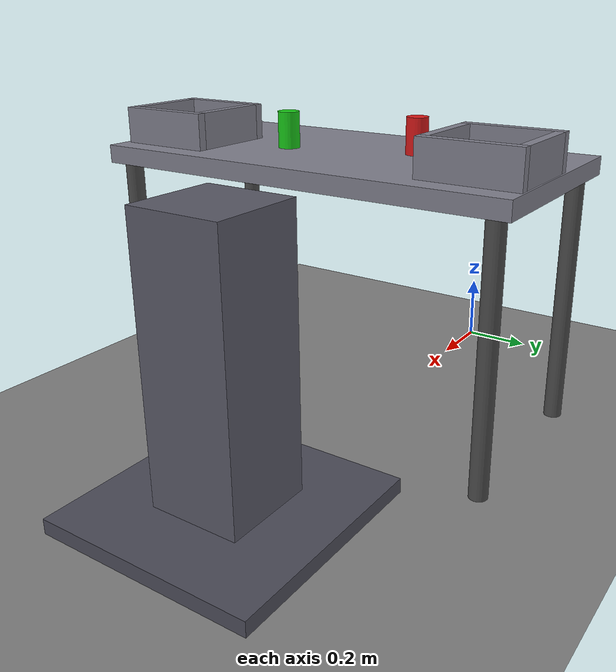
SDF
<?xml version="1.0" ?>
-->
<sdf version="1.8">
  <world name="tabletop_world">

    <physics name="250hz" type="ignored">
      <max_step_size>0.004</max_step_size>
      <real_time_factor>1.0</real_time_factor>
    </physics>

    <plugin filename="ignition-gazebo-physics-system"
            name="ignition::gazebo::systems::Physics"/>
    <plugin filename="ignition-gazebo-user-commands-system"
            name="ignition::gazebo::systems::UserCommands"/>
    <plugin filename="ignition-gazebo-scene-broadcaster-system"
            name="ignition::gazebo::systems::SceneBroadcaster"/>
    <plugin filename="ignition-gazebo-sensors-system"
            name="ignition::gazebo::systems::Sensors">
      <render_engine>ogre2</render_engine>
    </plugin>
    <plugin filename="ignition-gazebo-contact-system"
            name="ignition::gazebo::systems::Contact"/>

    <!-- Lighting -->
    <light type="directional" name="sun">
      <cast_shadows>true</cast_shadows>
      <pose>0 0 10 0 0 0</pose>
      <diffuse>1.0 1.0 1.0 1</diffuse>
      <specular>0.4 0.4 0.4 1</specular>
      <direction>-0.3 0.1 -0.9</direction>
    </light>
    <light type="directional" name="fill">
      <pose>2 1 5 0 0 0</pose>
      <diffuse>0.7 0.7 0.8 1</diffuse>
      <specular>0.1 0.1 0.1 1</specular>
      <direction>0.4 -0.2 -0.9</direction>
    </light>

    <!-- ── Ground plane ─────────────────────────────────────────────────── -->
    <model name="ground_plane">
      <static>true</static>
      <link name="link">
        <collision name="c">
          <geometry><plane><normal>0 0 1</normal></plane></geometry>
        </collision>
        <visual name="v">
          <geometry><plane><normal>0 0 1</normal><size>20 20</size></plane></geometry>
          <material>
            <ambient>0.4 0.4 0.4 1</ambient>
            <diffuse>0.5 0.5 0.5 1</diffuse>
          </material>
        </visual>
      </link>
    </model>

    <!-- ── ROBOT PEDESTAL ────────────────────────────────────────────────── -->
    <!--
      Standalone column supporting the arm base at world z=0.765.
      Column: 0.25×0.25×0.765 m, centre at (1.35, 0, 0.3825).
      Base plate: 0.60×0.60×0.04 m, centre at (1.35, 0, 0.02).
    -->
    <model name="robot_pedestal">
      <static>true</static>
      <pose>1.35 0 0 0 0 0</pose>

      <link name="base_plate">
        <pose>0 0 0.02 0 0 0</pose>
        <collision name="c"><geometry><box><size>0.60 0.60 0.04</size></box></geometry></collision>
        <visual name="v">
          <geometry><box><size>0.60 0.60 0.04</size></box></geometry>
          <material>
            <ambient>0.25 0.25 0.30 1</ambient>
            <diffuse>0.30 0.30 0.35 1</diffuse>
            <specular>0.15 0.15 0.15 1</specular>
          </material>
        </visual>
      </link>

      <link name="column">
        <pose>0 0 0.4025 0 0 0</pose>
        <collision name="c"><geometry><box><size>0.25 0.25 0.725</size></box></geometry></collision>
        <visual name="v">
          <geometry><box><size>0.25 0.25 0.725</size></box></geometry>
          <material>
            <ambient>0.30 0.30 0.35 1</ambient>
            <diffuse>0.35 0.35 0.40 1</diffuse>
            <specular>0.20 0.20 0.20 1</specular>
          </material>
        </visual>
      </link>
    </model>

    <!-- ── CONVEYOR TABLE ────────────────────────────────────────────────── -->
    <model name="conveyor_table">
      <static>true</static>
      <pose>0.70 -0.09 0.74 0 0 0</pose>

      <link name="table_top">
        <collision name="c">
          <geometry><box><size>0.60 1.22 0.05</size></box></geometry>
        </collision>
        <visual name="v">
          <geometry><box><size>0.60 1.22 0.05</size></box></geometry>
          <material>
            <ambient>0.45 0.45 0.50 1</ambient>
            <diffuse>0.50 0.50 0.55 1</diffuse>
            <specular>0.10 0.10 0.10 1</specular>
          </material>
        </visual>
      </link>

      <!-- Four corner legs — positions updated for new 0.60×1.22 top, centre Y=-0.09 -->
      <link name="leg_fl"><pose> 0.26  0.56 -0.38 0 0 0</pose>
        <collision name="c"><geometry><cylinder><radius>0.025</radius><length>0.72</length></cylinder></geometry></collision>
        <visual name="v"><geometry><cylinder><radius>0.025</radius><length>0.72</length></cylinder></geometry>
          <material><ambient>0.3 0.3 0.3 1</ambient><diffuse>0.3 0.3 0.3 1</diffuse></material></visual>
      </link>
      <link name="leg_fr"><pose> 0.26 -0.56 -0.38 0 0 0</pose>
        <collision name="c"><geometry><cylinder><radius>0.025</radius><length>0.72</length></cylinder></geometry></collision>
        <visual name="v"><geometry><cylinder><radius>0.025</radius><length>0.72</length></cylinder></geometry>
          <material><ambient>0.3 0.3 0.3 1</ambient><diffuse>0.3 0.3 0.3 1</diffuse></material></visual>
      </link>
      <link name="leg_bl"><pose>-0.26  0.56 -0.38 0 0 0</pose>
        <collision name="c"><geometry><cylinder><radius>0.025</radius><length>0.72</length></cylinder></geometry></collision>
        <visual name="v"><geometry><cylinder><radius>0.025</radius><length>0.72</length></cylinder></geometry>
          <material><ambient>0.3 0.3 0.3 1</ambient><diffuse>0.3 0.3 0.3 1</diffuse></material></visual>
      </link>
      <link name="leg_br"><pose>-0.26 -0.56 -0.38 0 0 0</pose>
        <collision name="c"><geometry><cylinder><radius>0.025</radius><length>0.72</length></cylinder></geometry></collision>
        <visual name="v"><geometry><cylinder><radius>0.025</radius><length>0.72</length></cylinder></geometry>
          <material><ambient>0.3 0.3 0.3 1</ambient><diffuse>0.3 0.3 0.3 1</diffuse></material></visual>
      </link>
    </model>

    <!-- ── LEFT BOX CONTAINER (Y- side, visually left) ───────────────────── -->
    <model name="left_box">
      <static>true</static>
      <pose>0.80 -0.55 0.765 0 0 0</pose>

      <link name="wall_back">
        <pose>0.1225 0 0.05 0 0 0</pose>
        <collision name="c"><geometry><box><size>0.025 0.27 0.10</size></box></geometry></collision>
        <visual name="v"><geometry><box><size>0.025 0.27 0.10</size></box></geometry>
          <material><ambient>0.45 0.45 0.50 1</ambient><diffuse>0.50 0.50 0.55 1</diffuse></material></visual>
      </link>
      <link name="wall_front">
        <pose>-0.1225 0 0.05 0 0 0</pose>
        <collision name="c"><geometry><box><size>0.025 0.27 0.10</size></box></geometry></collision>
        <visual name="v"><geometry><box><size>0.025 0.27 0.10</size></box></geometry>
          <material><ambient>0.45 0.45 0.50 1</ambient><diffuse>0.50 0.50 0.55 1</diffuse></material></visual>
      </link>
      <link name="wall_left">
        <pose>0 0.1225 0.05 0 0 0</pose>
        <collision name="c"><geometry><box><size>0.22 0.025 0.10</size></box></geometry></collision>
        <visual name="v"><geometry><box><size>0.22 0.025 0.10</size></box></geometry>
          <material><ambient>0.45 0.45 0.50 1</ambient><diffuse>0.50 0.50 0.55 1</diffuse></material></visual>
      </link>
      <link name="wall_right">
        <pose>0 -0.1225 0.05 0 0 0</pose>
        <collision name="c"><geometry><box><size>0.22 0.025 0.10</size></box></geometry></collision>
        <visual name="v"><geometry><box><size>0.22 0.025 0.10</size></box></geometry>
          <material><ambient>0.45 0.45 0.50 1</ambient><diffuse>0.50 0.50 0.55 1</diffuse></material></visual>
      </link>
    </model>

    <!-- ── RIGHT BOX CONTAINER (Y+ side, visually right) ────────────────── -->
    <model name="right_box">
      <static>true</static>
      <pose>0.80 0.38 0.765 0 0 0</pose>

      <link name="wall_back">
        <pose>0.1225 0 0.05 0 0 0</pose>
        <collision name="c"><geometry><box><size>0.025 0.27 0.10</size></box></geometry></collision>
        <visual name="v"><geometry><box><size>0.025 0.27 0.10</size></box></geometry>
          <material><ambient>0.45 0.45 0.50 1</ambient><diffuse>0.50 0.50 0.55 1</diffuse></material></visual>
      </link>
      <link name="wall_front">
        <pose>-0.1225 0 0.05 0 0 0</pose>
        <collision name="c"><geometry><box><size>0.025 0.27 0.10</size></box></geometry></collision>
        <visual name="v"><geometry><box><size>0.025 0.27 0.10</size></box></geometry>
          <material><ambient>0.45 0.45 0.50 1</ambient><diffuse>0.50 0.50 0.55 1</diffuse></material></visual>
      </link>
      <link name="wall_left">
        <pose>0 0.1225 0.05 0 0 0</pose>
        <collision name="c"><geometry><box><size>0.22 0.025 0.10</size></box></geometry></collision>
        <visual name="v"><geometry><box><size>0.22 0.025 0.10</size></box></geometry>
          <material><ambient>0.45 0.45 0.50 1</ambient><diffuse>0.50 0.50 0.55 1</diffuse></material></visual>
      </link>
      <link name="wall_right">
        <pose>0 -0.1225 0.05 0 0 0</pose>
        <collision name="c"><geometry><box><size>0.22 0.025 0.10</size></box></geometry></collision>
        <visual name="v"><geometry><box><size>0.22 0.025 0.10</size></box></geometry>
          <material><ambient>0.45 0.45 0.50 1</ambient><diffuse>0.50 0.50 0.55 1</diffuse></material></visual>
      </link>
    </model>

    <!-- ── CYLINDERS ON CONVEYOR ─────────────────────────────────────────── -->
    <!-- All: r=0.03 m, h=0.10 m → centre z = 0.765 + 0.05 = 0.815 m        -->
    <!-- Scattered across the table, shifted further from the scene camera.   -->

    <!-- Red Cylinder -->
    <model name="red_cylinder">
      <static>false</static>
      <pose>0.65 0.10 0.815 0 0 0</pose>
      <link name="link">
        <inertial><mass>0.1</mass>
          <inertia><ixx>0.0001</ixx><iyy>0.0001</iyy><izz>0.0001</izz>
                   <ixy>0</ixy><ixz>0</ixz><iyz>0</iyz></inertia>
        </inertial>
        <collision name="c">
          <geometry><cylinder><radius>0.03</radius><length>0.10</length></cylinder></geometry>
        </collision>
        <visual name="v">
          <geometry><cylinder><radius>0.03</radius><length>0.10</length></cylinder></geometry>
          <material><ambient>0.85 0.10 0.10 1</ambient><diffuse>0.85 0.10 0.10 1</diffuse></material>
        </visual>
      </link>
    </model>

    <!-- Green Cylinder -->
    <model name="green_cylinder">
      <static>false</static>
      <pose>0.75 -0.25 0.815 0 0 0</pose>
      <link name="link">
        <inertial><mass>0.1</mass>
          <inertia><ixx>0.0001</ixx><iyy>0.0001</iyy><izz>0.0001</izz>
                   <ixy>0</ixy><ixz>0</ixz><iyz>0</iyz></inertia>
        </inertial>
        <collision name="c">
          <geometry><cylinder><radius>0.03</radius><length>0.10</length></cylinder></geometry>
        </collision>
        <visual name="v">
          <geometry><cylinder><radius>0.03</radius><length>0.10</length></cylinder></geometry>
          <material><ambient>0.10 0.80 0.10 1</ambient><diffuse>0.10 0.80 0.10 1</diffuse></material>
        </visual>
      </link>
    </model>

    <!-- ── Scene overview camera ──────────────────────────────────────── -->
    <!-- Positioned in front of the scene (negative X), centred in Y,     -->
    <!-- looking straight along +X toward the robot arm.                  -->
    <!-- Pulled back slightly to X=-0.45 to frame the wider 1.40 m table. -->
    <model name="scene_camera_stand">
      <static>true</static>
      <pose>-0.45 -0.10 1.45 0 0.45 0</pose>
      <link name="camera_link">
        <sensor name="scene_camera" type="camera">
          <topic>/scene_camera/image_raw</topic>
          <camera name="scene">
            <horizontal_fov>1.35</horizontal_fov>
            <image>
              <width>640</width>
              <height>480</height>
              <format>R8G8B8</format>
            </image>
            <clip><near>0.1</near><far>12.0</far></clip>
          </camera>
          <always_on>true</always_on>
          <update_rate>10</update_rate>
          <visualize>false</visualize>
        </sensor>
      </link>
    </model>

  </world>
</sdf>
